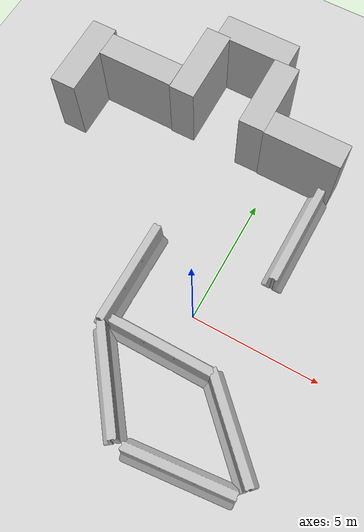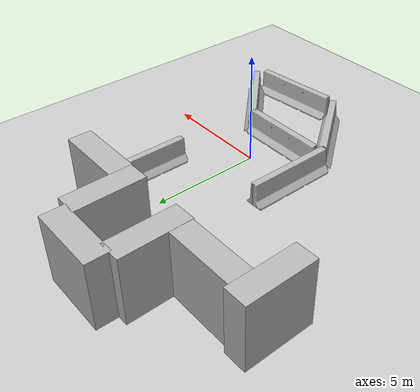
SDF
<sdf version="1.7">
 <world name="default">
  <light name="sun" type="directional">
   <pose>0 0 10 0 -0 0</pose>
   <diffuse>0.8 0.8 0.8 1</diffuse>
   <specular>0.2 0.2 0.2 1</specular>
   <attenuation>
    <range>1000</range>
    <constant>0.9</constant>
    <linear>0.01</linear>
    <quadratic>0.001</quadratic>
   </attenuation>
   <direction>-0.5 0.1 -0.9</direction>
   <spot><inner_angle>0</inner_angle><outer_angle>0</outer_angle><falloff>0</falloff></spot>
  </light>
  <model name="ground_plane">
   <static>1</static>
   <link name="link">
    <collision name="collision">
     <geometry><plane><normal>0 0 1</normal><size>100 100</size></plane></geometry>
     <surface>
      <contact><collide_bitmask>65535</collide_bitmask></contact>
      <friction><ode><mu>100</mu><mu2>50</mu2></ode></friction>
     </surface>
    </collision>
    <visual name="visual">
     <cast_shadows>0</cast_shadows>
     <geometry><plane><normal>0 0 1</normal><size>100 100</size></plane></geometry>
     <material>
      <script><uri>file://media/materials/scripts/gazebo.material</uri><name>Gazebo/Grey</name></script>
     </material>
    </visual>
   </link>
  </model>
  <gravity>0 0 -9.8</gravity>
  <magnetic_field>6e-06 2.3e-05 -4.2e-05</magnetic_field>
  <atmosphere type="adiabatic"/>
  <physics type="ode">
   <max_step_size>0.001</max_step_size>
   <real_time_factor>1</real_time_factor>
   <real_time_update_rate>1000</real_time_update_rate>
  </physics>
  <scene><ambient>0.4 0.4 0.4 1</ambient><background>0.7 0.7 0.7 1</background><shadows>1</shadows></scene>
  <spherical_coordinates>
   <surface_model>EARTH_WGS84</surface_model>
   <latitude_deg>0</latitude_deg>
   <longitude_deg>0</longitude_deg>
   <elevation>0</elevation>
   <heading_deg>0</heading_deg>
  </spherical_coordinates>
  <model name="jersey_barrier">
   <static>1</static>
   <link name="link">
    <visual name="visual">
     <geometry><mesh><uri>model://jersey_barrier/meshes/jersey_barrier.dae</uri></mesh></geometry>
    </visual>
    <collision name="upright">
     <pose>0 0 0.5715 0 -0 0</pose>
     <geometry><box><size>4.06542 0.3063 1.143</size></box></geometry>
    </collision>
    <collision name="base">
     <pose>0 0 0.032258 0 -0 0</pose>
     <geometry><box><size>4.06542 0.8107 0.064516</size></box></geometry>
    </collision>
    <collision name="base2">
     <pose>0 0 0.1 0 -0 0</pose>
     <geometry><box><size>4.06542 0.65 0.1</size></box></geometry>
    </collision>
    <collision name="base3">
     <pose>0 0 0.2 0 -0 0</pose>
     <geometry><box><size>4.06542 0.5 0.1</size></box></geometry>
    </collision>
    <collision name="left-angle">
     <pose>0 -0.224 0.2401 0.9 -0 0</pose>
     <geometry><box><size>4.06542 0.5 0.064516</size></box></geometry>
    </collision>
    <collision name="right-angle">
     <pose>0 0.224 0.2401 -0.9 0 0</pose>
     <geometry><box><size>4.06542 0.5 0.064516</size></box></geometry>
    </collision>
   </link>
   <pose>-0.297435 -1.65915 0 0 -0 0</pose>
  </model>
  <model name="jersey_barrier_clone">
   <static>1</static>
   <link name="link">
    <visual name="visual">
     <geometry><mesh><uri>model://jersey_barrier/meshes/jersey_barrier.dae</uri></mesh></geometry>
    </visual>
    <collision name="upright">
     <pose>0 0 0.5715 0 -0 0</pose>
     <geometry><box><size>4.06542 0.3063 1.143</size></box></geometry>
    </collision>
    <collision name="base">
     <pose>0 0 0.032258 0 -0 0</pose>
     <geometry><box><size>4.06542 0.8107 0.064516</size></box></geometry>
    </collision>
    <collision name="base2">
     <pose>0 0 0.1 0 -0 0</pose>
     <geometry><box><size>4.06542 0.65 0.1</size></box></geometry>
    </collision>
    <collision name="base3">
     <pose>0 0 0.2 0 -0 0</pose>
     <geometry><box><size>4.06542 0.5 0.1</size></box></geometry>
    </collision>
    <collision name="left-angle">
     <pose>0 -0.224 0.2401 0.9 -0 0</pose>
     <geometry><box><size>4.06542 0.5 0.064516</size></box></geometry>
    </collision>
    <collision name="right-angle">
     <pose>0 0.224 0.2401 -0.9 0 0</pose>
     <geometry><box><size>4.06542 0.5 0.064516</size></box></geometry>
    </collision>
   </link>
   <pose>3.03177 -2.92754 0 0 0 -0.773662</pose>
  </model>
  <model name="jersey_barrier_clone_0">
   <static>1</static>
   <link name="link">
    <visual name="visual">
     <geometry><mesh><uri>model://jersey_barrier/meshes/jersey_barrier.dae</uri></mesh></geometry>
    </visual>
    <collision name="upright">
     <pose>0 0 0.5715 0 -0 0</pose>
     <geometry><box><size>4.06542 0.3063 1.143</size></box></geometry>
    </collision>
    <collision name="base">
     <pose>0 0 0.032258 0 -0 0</pose>
     <geometry><box><size>4.06542 0.8107 0.064516</size></box></geometry>
    </collision>
    <collision name="base2">
     <pose>0 0 0.1 0 -0 0</pose>
     <geometry><box><size>4.06542 0.65 0.1</size></box></geometry>
    </collision>
    <collision name="base3">
     <pose>0 0 0.2 0 -0 0</pose>
     <geometry><box><size>4.06542 0.5 0.1</size></box></geometry>
    </collision>
    <collision name="left-angle">
     <pose>0 -0.224 0.2401 0.9 -0 0</pose>
     <geometry><box><size>4.06542 0.5 0.064516</size></box></geometry>
    </collision>
    <collision name="right-angle">
     <pose>0 0.224 0.2401 -0.9 0 0</pose>
     <geometry><box><size>4.06542 0.5 0.064516</size></box></geometry>
    </collision>
   </link>
   <pose>2.21848 -4.92577 0 0 -0 0.103698</pose>
  </model>
  <model name="jersey_barrier_clone_1">
   <static>1</static>
   <link name="link">
    <visual name="visual">
     <geometry><mesh><uri>model://jersey_barrier/meshes/jersey_barrier.dae</uri></mesh></geometry>
    </visual>
    <collision name="upright">
     <pose>0 0 0.5715 0 -0 0</pose>
     <geometry><box><size>4.06542 0.3063 1.143</size></box></geometry>
    </collision>
    <collision name="base">
     <pose>0 0 0.032258 0 -0 0</pose>
     <geometry><box><size>4.06542 0.8107 0.064516</size></box></geometry>
    </collision>
    <collision name="base2">
     <pose>0 0 0.1 0 -0 0</pose>
     <geometry><box><size>4.06542 0.65 0.1</size></box></geometry>
    </collision>
    <collision name="base3">
     <pose>0 0 0.2 0 -0 0</pose>
     <geometry><box><size>4.06542 0.5 0.1</size></box></geometry>
    </collision>
    <collision name="left-angle">
     <pose>0 -0.224 0.2401 0.9 -0 0</pose>
     <geometry><box><size>4.06542 0.5 0.064516</size></box></geometry>
    </collision>
    <collision name="right-angle">
     <pose>0 0.224 0.2401 -0.9 0 0</pose>
     <geometry><box><size>4.06542 0.5 0.064516</size></box></geometry>
    </collision>
   </link>
   <pose>-2.63465 0.137225 0 0 -0 1.57047</pose>
  </model>
  <model name="jersey_barrier_clone_2">
   <static>1</static>
   <link name="link">
    <visual name="visual">
     <geometry><mesh><uri>model://jersey_barrier/meshes/jersey_barrier.dae</uri></mesh></geometry>
    </visual>
    <collision name="upright">
     <pose>0 0 0.5715 0 -0 0</pose>
     <geometry><box><size>4.06542 0.3063 1.143</size></box></geometry>
    </collision>
    <collision name="base">
     <pose>0 0 0.032258 0 -0 0</pose>
     <geometry><box><size>4.06542 0.8107 0.064516</size></box></geometry>
    </collision>
    <collision name="base2">
     <pose>0 0 0.1 0 -0 0</pose>
     <geometry><box><size>4.06542 0.65 0.1</size></box></geometry>
    </collision>
    <collision name="base3">
     <pose>0 0 0.2 0 -0 0</pose>
     <geometry><box><size>4.06542 0.5 0.1</size></box></geometry>
    </collision>
    <collision name="left-angle">
     <pose>0 -0.224 0.2401 0.9 -0 0</pose>
     <geometry><box><size>4.06542 0.5 0.064516</size></box></geometry>
    </collision>
    <collision name="right-angle">
     <pose>0 0.224 0.2401 -0.9 0 0</pose>
     <geometry><box><size>4.06542 0.5 0.064516</size></box></geometry>
    </collision>
   </link>
   <pose>-1.34694 -3.52177 0 0 0 -0.923729</pose>
  </model>
  <model name="brick_box_3x1x3">
   <static>1</static>
   <link name="chassis">
    <pose>0 0 1.5 0 -0 0</pose>
    <collision name="collision"><geometry><box><size>3 1 3</size></box></geometry></collision>
    <visual name="visual">
     <geometry><mesh><uri>model://brick_box_3x1x3/meshes/simple_box.dae</uri><scale>3 1 3</scale></mesh></geometry>
     <material>
      <script>
       <uri>model://brick_box_3x1x3/materials/scripts</uri>
       <uri>model://brick_box_3x1x3/materials/textures</uri>
       <name>BrickBox/Diffuse</name>
      </script>
     </material>
    </visual>
   </link>
   <pose>-8.03199 6.18724 0 0 0 -1.56233</pose>
  </model>
  <model name="brick_box_3x1x3_clone">
   <static>1</static>
   <link name="chassis">
    <pose>0 0 1.5 0 -0 0</pose>
    <collision name="collision"><geometry><box><size>3 1 3</size></box></geometry></collision>
    <visual name="visual">
     <geometry><mesh><uri>model://brick_box_3x1x3/meshes/simple_box.dae</uri><scale>3 1 3</scale></mesh></geometry>
     <material>
      <script>
       <uri>model://brick_box_3x1x3/materials/scripts</uri>
       <uri>model://brick_box_3x1x3/materials/textures</uri>
       <name>BrickBox/Diffuse</name>
      </script>
     </material>
    </visual>
   </link>
   <pose>-6.05051 7.00972 0 0 0 -3.13988</pose>
  </model>
  <model name="brick_box_3x1x3_clone_clone">
   <static>1</static>
   <link name="chassis">
    <pose>0 0 1.5 0 -0 0</pose>
    <collision name="collision"><geometry><box><size>3 1 3</size></box></geometry></collision>
    <visual name="visual">
     <geometry><mesh><uri>model://brick_box_3x1x3/meshes/simple_box.dae</uri><scale>3 1 3</scale></mesh></geometry>
     <material>
      <script>
       <uri>model://brick_box_3x1x3/materials/scripts</uri>
       <uri>model://brick_box_3x1x3/materials/textures</uri>
       <name>BrickBox/Diffuse</name>
      </script>
     </material>
    </visual>
   </link>
   <pose>-4.05764 7.97033 0 0 0 -1.55696</pose>
  </model>
  <model name="brick_box_3x1x3_clone_clone_clone">
   <static>1</static>
   <link name="chassis">
    <pose>0 0 1.5 0 -0 0</pose>
    <collision name="collision"><geometry><box><size>3 1 3</size></box></geometry></collision>
    <visual name="visual">
     <geometry><mesh><uri>model://brick_box_3x1x3/meshes/simple_box.dae</uri><scale>3 1 3</scale></mesh></geometry>
     <material>
      <script>
       <uri>model://brick_box_3x1x3/materials/scripts</uri>
       <uri>model://brick_box_3x1x3/materials/textures</uri>
       <name>BrickBox/Diffuse</name>
      </script>
     </material>
    </visual>
   </link>
   <pose>-1.15971 7.89615 0 0 0 -1.55696</pose>
  </model>
  <model name="brick_box_3x1x3_clone_clone_0">
   <static>1</static>
   <link name="chassis">
    <pose>0 0 1.5 0 -0 0</pose>
    <collision name="collision"><geometry><box><size>3 1 3</size></box></geometry></collision>
    <visual name="visual">
     <geometry><mesh><uri>model://brick_box_3x1x3/meshes/simple_box.dae</uri><scale>3 1 3</scale></mesh></geometry>
     <material>
      <script>
       <uri>model://brick_box_3x1x3/materials/scripts</uri>
       <uri>model://brick_box_3x1x3/materials/textures</uri>
       <name>BrickBox/Diffuse</name>
      </script>
     </material>
    </visual>
   </link>
   <pose>-2.62385 9.86153 0 0 0 -3.13988</pose>
  </model>
  <model name="brick_box_3x1x3_clone_clone_1">
   <static>1</static>
   <link name="chassis">
    <pose>0 0 1.5 0 -0 0</pose>
    <collision name="collision"><geometry><box><size>3 1 3</size></box></geometry></collision>
    <visual name="visual">
     <geometry><mesh><uri>model://brick_box_3x1x3/meshes/simple_box.dae</uri><scale>3 1 3</scale></mesh></geometry>
     <material>
      <script>
       <uri>model://brick_box_3x1x3/materials/scripts</uri>
       <uri>model://brick_box_3x1x3/materials/textures</uri>
       <name>BrickBox/Diffuse</name>
      </script>
     </material>
    </visual>
   </link>
   <pose>0.841461 6.87331 0 0 0 -3.13988</pose>
  </model>
  <model name="jersey_barrier_clone_1_clone">
   <static>1</static>
   <link name="link">
    <visual name="visual">
     <geometry><mesh><uri>model://jersey_barrier/meshes/jersey_barrier.dae</uri></mesh></geometry>
    </visual>
    <collision name="upright">
     <pose>0 0 0.5715 0 -0 0</pose>
     <geometry><box><size>4.06542 0.3063 1.143</size></box></geometry>
    </collision>
    <collision name="base">
     <pose>0 0 0.032258 0 -0 0</pose>
     <geometry><box><size>4.06542 0.8107 0.064516</size></box></geometry>
    </collision>
    <collision name="base2">
     <pose>0 0 0.1 0 -0 0</pose>
     <geometry><box><size>4.06542 0.65 0.1</size></box></geometry>
    </collision>
    <collision name="base3">
     <pose>0 0 0.2 0 -0 0</pose>
     <geometry><box><size>4.06542 0.5 0.1</size></box></geometry>
    </collision>
    <collision name="left-angle">
     <pose>0 -0.224 0.2401 0.9 -0 0</pose>
     <geometry><box><size>4.06542 0.5 0.064516</size></box></geometry>
    </collision>
    <collision name="right-angle">
     <pose>0 0.224 0.2401 -0.9 0 0</pose>
     <geometry><box><size>4.06542 0.5 0.064516</size></box></geometry>
    </collision>
   </link>
   <pose>1.98557 4.31516 0 0 -0 1.57047</pose>
  </model>
 </world>
</sdf>
